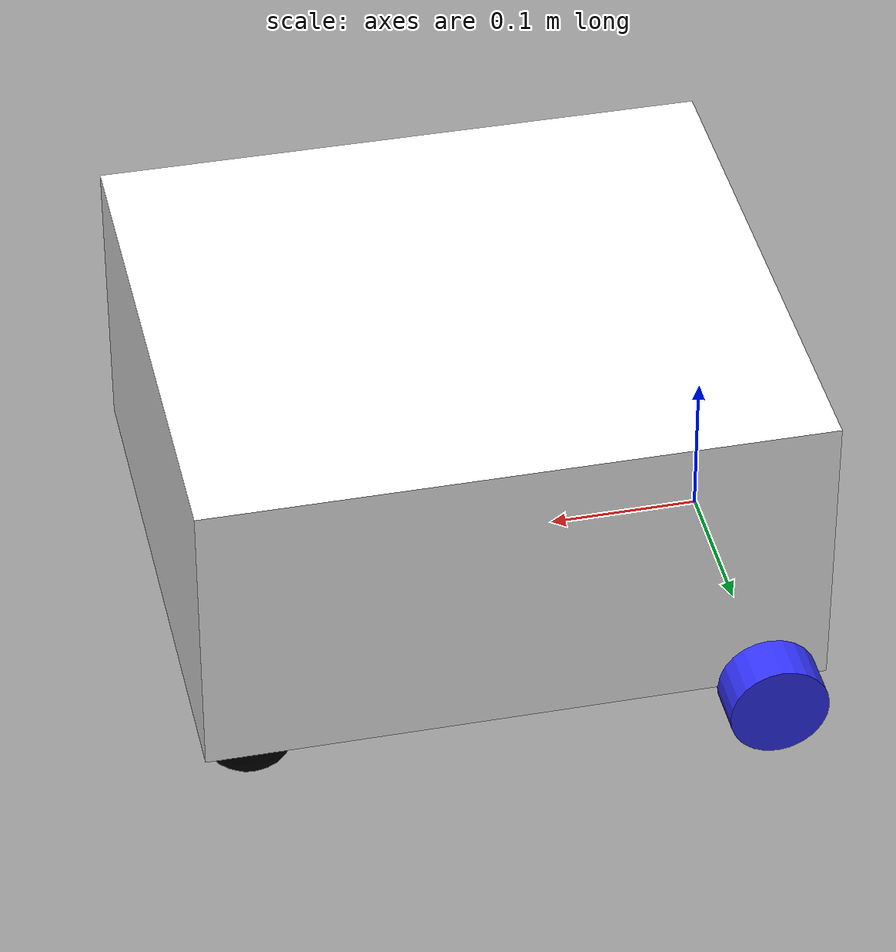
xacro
<?xml version="1.0"?>
<robot xmlns:xacro="http://www.ros.org/wiki/xacro">

    <xacro:include filename="inertial_macros.xacro"/>

    <material name="white">
        <color rgba="1 1 1 1" />
    </material>

    <material name="orange">
        <color rgba="1 0.3 0.1 1"/>
    </material>

    <material name="blue">
        <color rgba="0.2 0.2 1 1"/>
    </material>

    <material name="black">
        <color rgba="0 0 0 1"/>
    </material>

    <!-- BASE LINK -->
    <link name="base_link">

    </link>

    <!-- CHASSIS LINK -->

    <joint name="chassis_joint" type="fixed">
        <parent link="base_link"/>
        <child link="chassis"/>
        <origin xyz="-0.04 0 0"/>
    </joint>

    <link name="chassis">
        <visual>
            <origin xyz="0.205 0 0.1"/> <!--half value of box size -->
            <geometry>
                <box size="0.41 0.37 0.20"/>
            </geometry>
            <material name="white"/>
        </visual>
        <collision>
            <origin xyz="0.205 0 0.1"/> <!--half of box size-->
            <geometry>
                <box size="0.41 0.37 0.20"/>
            </geometry>
        </collision>
        <xacro:inertial_box mass="1" x="0.41" y="0.37" z="0.20">
            <origin xyz="0.205 0 0.1" rpy="0 0 0"/>
        </xacro:inertial_box>
    </link>

    <gazebo reference="chassis">
        <material>Gazebo/White</material>
    </gazebo>

    <!-- LEFT WHEEL LINK -->

    <joint name="left_wheel_joint" type="continuous">
        <parent link="base_link"/>
        <child link="left_wheel"/>
        <origin xyz="0 0.200 0" rpy="-${pi/2} 0 0" /> <!--wheel distance from the origin/center and orientation-->
        <axis xyz="0 0 1"/>
    </joint>

    <link name="left_wheel">
        <visual>
            <geometry>
                <cylinder radius="0.033" length="0.035"/>
            </geometry>
            <material name="blue"/>
        </visual>
        <collision>
            <geometry>
                <cylinder radius="0.033" length="0.035"/>
            </geometry>
        </collision>
        <xacro:inertial_cylinder mass="0.1" length="0.035" radius="0.033">
            <origin xyz="0 0 0" rpy="0 0 0"/>
        </xacro:inertial_cylinder>
    </link>

    <gazebo reference="left_wheel">
        <material>Gazebo/Blue</material>
    </gazebo>

    <!-- RIGHT WHEEL LINK -->

    <joint name="right_wheel_joint" type="continuous">
        <parent link="base_link"/>
        <child link="right_wheel"/>
        <origin xyz="0 -0.200 0" rpy="${pi/2} 0 0" />
        <axis xyz="0 0 -1"/>
    </joint>

    <link name="right_wheel">
        <visual>
            <geometry>
                <cylinder radius="0.033" length="0.035"/>
            </geometry>
            <material name="blue"/>
        </visual>
        <collision>
            <geometry>
                <cylinder radius="0.033" length="0.035"/>
            </geometry>
        </collision>
        <xacro:inertial_cylinder mass="0.1" length="0.035" radius="0.033">
            <origin xyz="0 0 0" rpy="0 0 0"/>
        </xacro:inertial_cylinder>
    </link>

    <gazebo reference="right_wheel">
        <material>Gazebo/Blue</material>
    </gazebo>

    <!-- LEFT CASTER WHEEL LINK -->

    <joint name="left_caster_wheel_joint" type="fixed">
        <parent link="chassis"/>
        <child link="left_caster_wheel"/>
        <origin xyz="0.377 0.152 0"/> <!-- x=length-radius y=(width/2)-radius -->
    </joint>

    <link name="left_caster_wheel">
        <visual>
            <geometry>
                <sphere radius="0.033"/> <!-- make sure same radius with wheel so it will be even on ground -->
            </geometry>
            <material name="black"/>
        </visual>
        <collision>
            <geometry>
                <sphere radius="0.033"/>
            </geometry>
        </collision>
        <xacro:inertial_sphere mass="0.1" radius="0.033">
            <origin xyz="0 0 0" rpy="0 0 0"/>
        </xacro:inertial_sphere>
    </link>

    <gazebo reference="left_caster_wheel">
        <material>Gazebo/Black</material>
        <mu1 value="0.001"/>
        <mu2 value="0.001"/>
    </gazebo>

    <!-- RIGHT CASTER WHEEL LINK -->

    <joint name="right_caster_wheel_joint" type="fixed">
        <parent link="chassis"/>
        <child link="right_caster_wheel"/>
        <origin xyz="0.377 -0.152 0"/>
    </joint>

    <link name="right_caster_wheel">
        <visual>
            <geometry>
                <sphere radius="0.033"/>
            </geometry>
            <material name="black"/>
        </visual>
        <collision>
            <geometry>
                <sphere radius="0.033"/>
            </geometry>
        </collision>
        <xacro:inertial_sphere mass="0.1" radius="0.033">
            <origin xyz="0 0 0" rpy="0 0 0"/>
        </xacro:inertial_sphere>
    </link>

    <gazebo reference="right_caster_wheel">
        <material>Gazebo/Black</material>
        <mu1 value="0.001"/>
        <mu2 value="0.001"/>
    </gazebo>

</robot>
